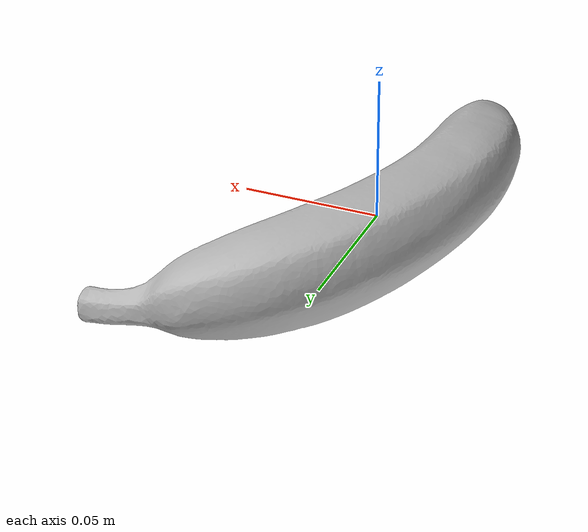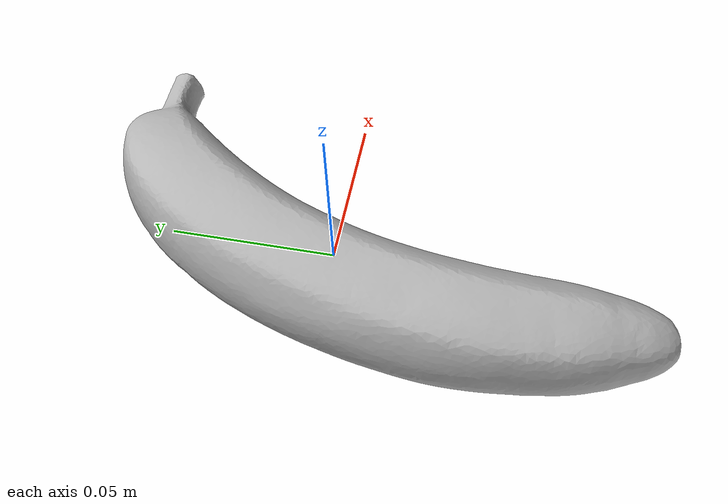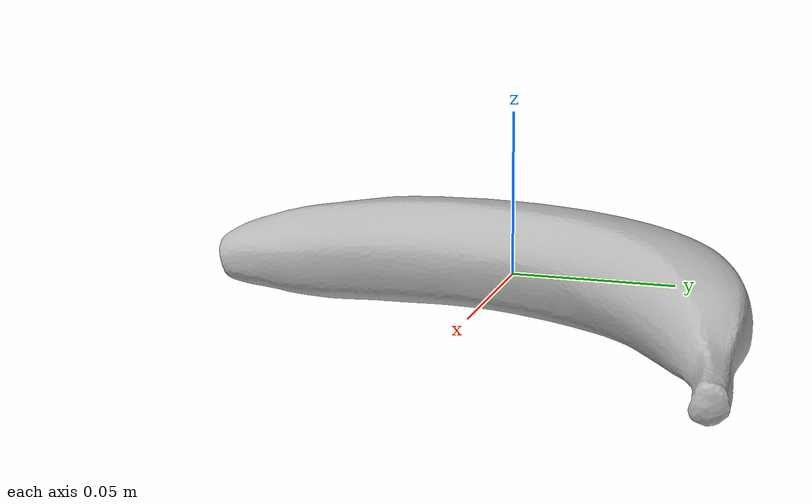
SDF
<?xml version='1.0'?>
<sdf version="1.4">
  <model name="banana">
    <static>false</static>
    <link name="link">
      <inertial>
        <pose>0 0 0 -1.5542738497302573 -1.3696969889633943 -0.3362925442158162</pose>
        <mass>0.00017153252062943915</mass>
        <inertia>
          <ixx>4.2719946419307256e-07</ixx>
          <ixy>1.3234889800848443e-23</ixy>
          <ixz>-1.8534015600016276e-23</ixz>
          <iyy>4.107664030738321e-07</iyy>
          <iyz>1.3661404804196098e-23</iyz>
          <izz>4.0753878020832103e-08</izz>
        </inertia>
      </inertial>
      <collision name="collision">
        <geometry>
          <mesh>
            <!-- Use a downsampled mesh for collisions -->
            <uri>model://011_banana/google_16k/textured_simple.obj</uri>
	        </mesh>
        </geometry>
        <surface>
      </surface>
      </collision>
      <visual name="visual">
        <geometry>
          <mesh>
            <uri>model://011_banana/google_16k/textured_simple.obj</uri>
	        </mesh>
        </geometry>
      </visual>
    </link>
  </model>
</sdf>
